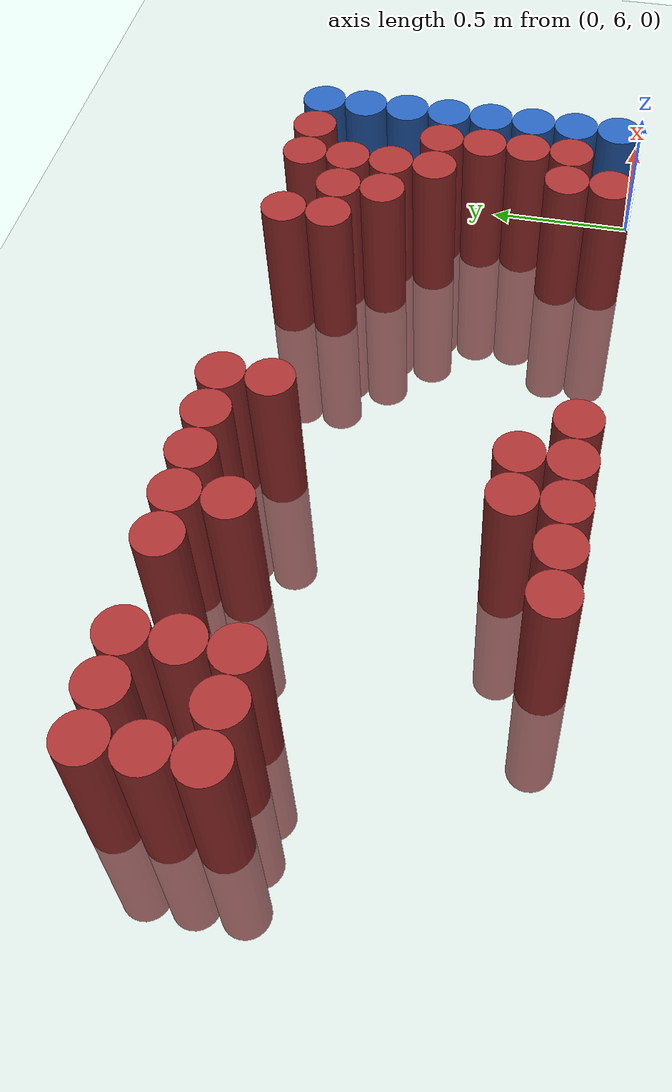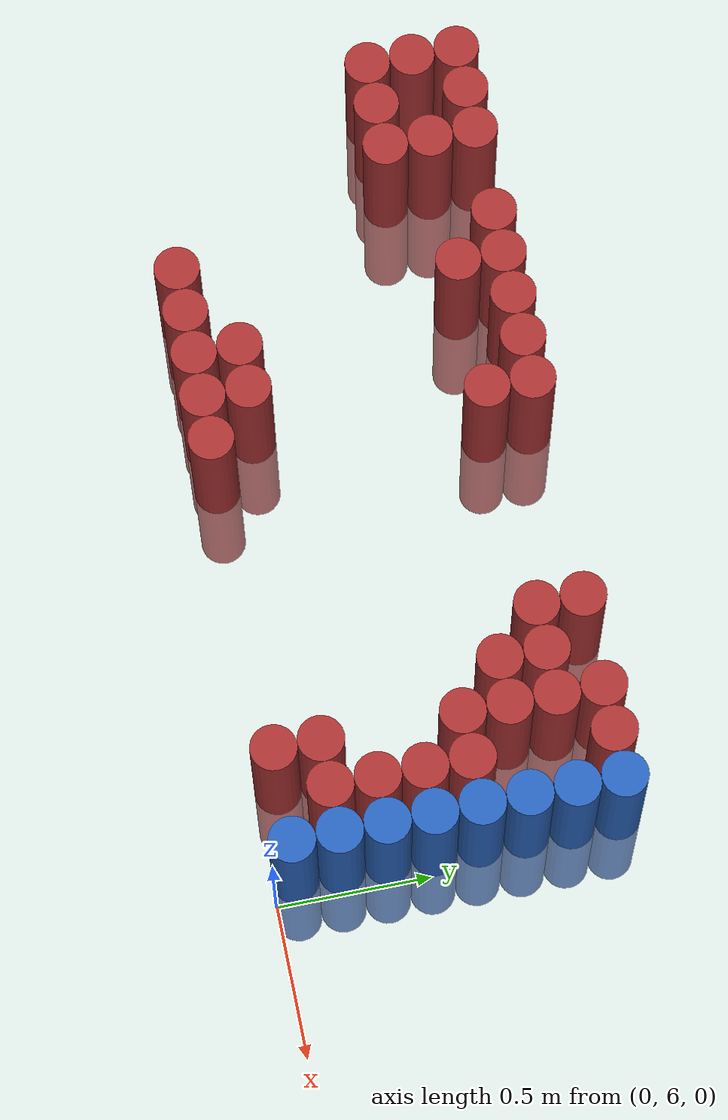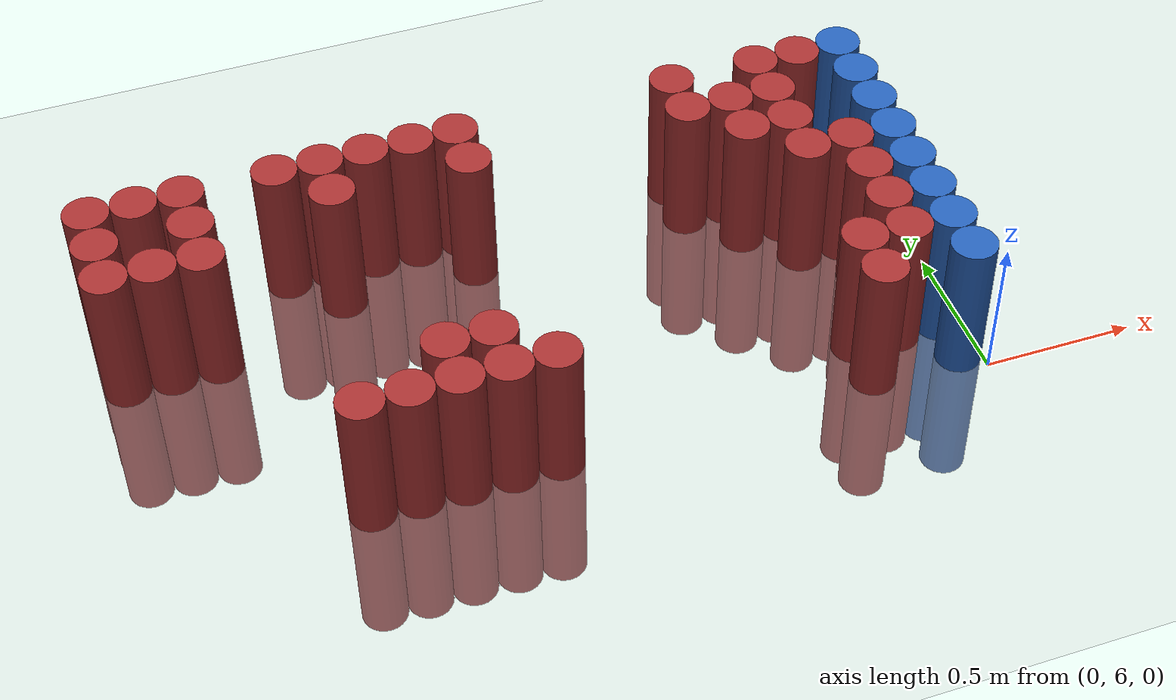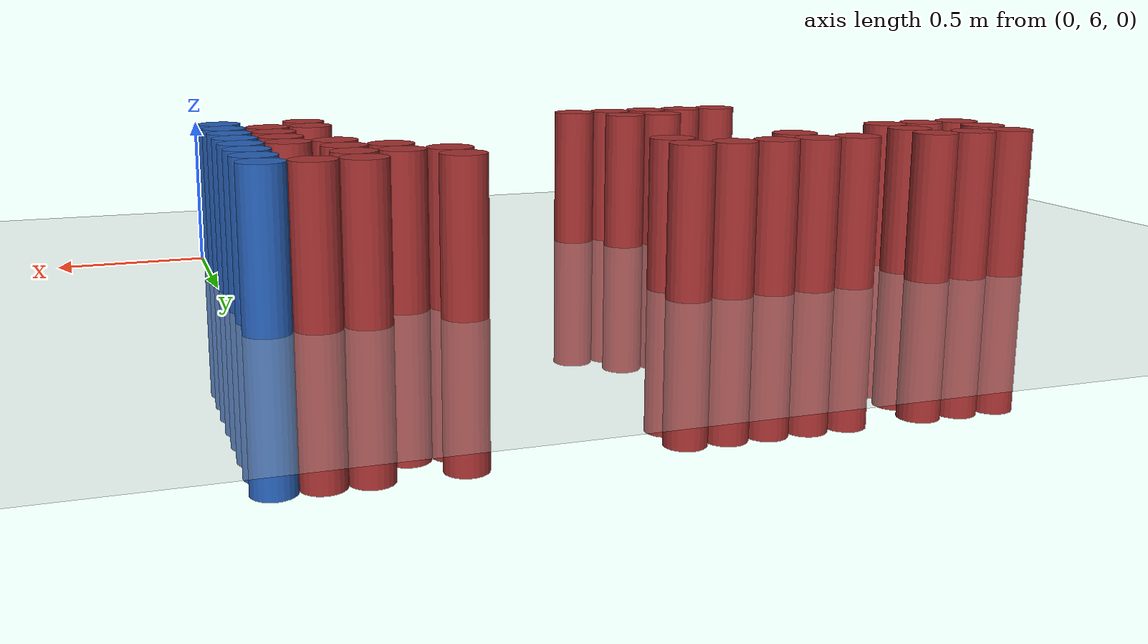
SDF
<sdf version="1.6">
 <world name="default">
  <model name="ground_plane">
   <static>1</static>
   <link name="link">
    <collision name="collision">
     <geometry><plane><normal>0 0 1</normal><size>100 100</size></plane></geometry>
     <surface><friction><ode><mu>100</mu><mu2>50</mu2></ode></friction></surface>
    </collision>
    <visual name="visual">
     <cast_shadows>0</cast_shadows>
     <geometry><plane><normal>0 0 1</normal><size>100 100</size></plane></geometry>
     <material>
      <script><uri>file://media/materials/scripts/gazebo.material</uri><name>Gazebo/Grey</name></script>
     </material>
    </visual>
   </link>
  </model>
  <model name="unit_cylinder_161">
   <static>1</static>
   <pose>-2.625000 6.825000 0.000000 0.000000 0.000000 0.000000</pose>
   <link name="link">
    <inertial>
     <mass>1</mass>
     <inertia><ixx>0.145833</ixx><ixy>0</ixy><ixz>0</ixz><iyy>0.145833</iyy><iyz>0</iyz><izz>0.125</izz></inertia>
    </inertial>
    <collision name="collision">
     <geometry><cylinder><radius>0.075000</radius><length>1</length></cylinder></geometry>
    </collision>
    <visual name="visual">
     <geometry><cylinder><radius>0.075000</radius><length>1</length></cylinder></geometry>
     <material>
      <ambient>0.648000 0.192000 0.192000 1</ambient>
      <diffuse>0.648000 0.192000 0.192000 1</diffuse>
     </material>
     <material>
      <script><name>Gazebo/Grey</name><uri>file://media/materials/scripts/gazebo.material</uri></script>
     </material>
    </visual>
   </link>
  </model>
  <model name="unit_cylinder_162">
   <static>1</static>
   <pose>-2.625000 6.975000 0.000000 0.000000 0.000000 0.000000</pose>
   <link name="link">
    <inertial>
     <mass>1</mass>
     <inertia><ixx>0.145833</ixx><ixy>0</ixy><ixz>0</ixz><iyy>0.145833</iyy><iyz>0</iyz><izz>0.125</izz></inertia>
    </inertial>
    <collision name="collision">
     <geometry><cylinder><radius>0.075000</radius><length>1</length></cylinder></geometry>
    </collision>
    <visual name="visual">
     <geometry><cylinder><radius>0.075000</radius><length>1</length></cylinder></geometry>
     <material>
      <ambient>0.648000 0.192000 0.192000 1</ambient>
      <diffuse>0.648000 0.192000 0.192000 1</diffuse>
     </material>
     <material>
      <script><name>Gazebo/Grey</name><uri>file://media/materials/scripts/gazebo.material</uri></script>
     </material>
    </visual>
   </link>
  </model>
  <model name="unit_cylinder_163">
   <static>1</static>
   <pose>-2.625000 7.125000 0.000000 0.000000 0.000000 0.000000</pose>
   <link name="link">
    <inertial>
     <mass>1</mass>
     <inertia><ixx>0.145833</ixx><ixy>0</ixy><ixz>0</ixz><iyy>0.145833</iyy><iyz>0</iyz><izz>0.125</izz></inertia>
    </inertial>
    <collision name="collision">
     <geometry><cylinder><radius>0.075000</radius><length>1</length></cylinder></geometry>
    </collision>
    <visual name="visual">
     <geometry><cylinder><radius>0.075000</radius><length>1</length></cylinder></geometry>
     <material>
      <ambient>0.648000 0.192000 0.192000 1</ambient>
      <diffuse>0.648000 0.192000 0.192000 1</diffuse>
     </material>
     <material>
      <script><name>Gazebo/Grey</name><uri>file://media/materials/scripts/gazebo.material</uri></script>
     </material>
    </visual>
   </link>
  </model>
  <model name="unit_cylinder_168">
   <static>1</static>
   <pose>-2.475000 6.825000 0.000000 0.000000 0.000000 0.000000</pose>
   <link name="link">
    <inertial>
     <mass>1</mass>
     <inertia><ixx>0.145833</ixx><ixy>0</ixy><ixz>0</ixz><iyy>0.145833</iyy><iyz>0</iyz><izz>0.125</izz></inertia>
    </inertial>
    <collision name="collision">
     <geometry><cylinder><radius>0.075000</radius><length>1</length></cylinder></geometry>
    </collision>
    <visual name="visual">
     <geometry><cylinder><radius>0.075000</radius><length>1</length></cylinder></geometry>
     <material>
      <ambient>0.648000 0.192000 0.192000 1</ambient>
      <diffuse>0.648000 0.192000 0.192000 1</diffuse>
     </material>
     <material>
      <script><name>Gazebo/Grey</name><uri>file://media/materials/scripts/gazebo.material</uri></script>
     </material>
    </visual>
   </link>
  </model>
  <model name="unit_cylinder_169">
   <static>1</static>
   <pose>-2.475000 7.125000 0.000000 0.000000 0.000000 0.000000</pose>
   <link name="link">
    <inertial>
     <mass>1</mass>
     <inertia><ixx>0.145833</ixx><ixy>0</ixy><ixz>0</ixz><iyy>0.145833</iyy><iyz>0</iyz><izz>0.125</izz></inertia>
    </inertial>
    <collision name="collision">
     <geometry><cylinder><radius>0.075000</radius><length>1</length></cylinder></geometry>
    </collision>
    <visual name="visual">
     <geometry><cylinder><radius>0.075000</radius><length>1</length></cylinder></geometry>
     <material>
      <ambient>0.648000 0.192000 0.192000 1</ambient>
      <diffuse>0.648000 0.192000 0.192000 1</diffuse>
     </material>
     <material>
      <script><name>Gazebo/Grey</name><uri>file://media/materials/scripts/gazebo.material</uri></script>
     </material>
    </visual>
   </link>
  </model>
  <model name="unit_cylinder_173">
   <static>1</static>
   <pose>-2.325000 6.825000 0.000000 0.000000 0.000000 0.000000</pose>
   <link name="link">
    <inertial>
     <mass>1</mass>
     <inertia><ixx>0.145833</ixx><ixy>0</ixy><ixz>0</ixz><iyy>0.145833</iyy><iyz>0</iyz><izz>0.125</izz></inertia>
    </inertial>
    <collision name="collision">
     <geometry><cylinder><radius>0.075000</radius><length>1</length></cylinder></geometry>
    </collision>
    <visual name="visual">
     <geometry><cylinder><radius>0.075000</radius><length>1</length></cylinder></geometry>
     <material>
      <ambient>0.648000 0.192000 0.192000 1</ambient>
      <diffuse>0.648000 0.192000 0.192000 1</diffuse>
     </material>
     <material>
      <script><name>Gazebo/Grey</name><uri>file://media/materials/scripts/gazebo.material</uri></script>
     </material>
    </visual>
   </link>
  </model>
  <model name="unit_cylinder_174">
   <static>1</static>
   <pose>-2.325000 6.975000 0.000000 0.000000 0.000000 0.000000</pose>
   <link name="link">
    <inertial>
     <mass>1</mass>
     <inertia><ixx>0.145833</ixx><ixy>0</ixy><ixz>0</ixz><iyy>0.145833</iyy><iyz>0</iyz><izz>0.125</izz></inertia>
    </inertial>
    <collision name="collision">
     <geometry><cylinder><radius>0.075000</radius><length>1</length></cylinder></geometry>
    </collision>
    <visual name="visual">
     <geometry><cylinder><radius>0.075000</radius><length>1</length></cylinder></geometry>
     <material>
      <ambient>0.648000 0.192000 0.192000 1</ambient>
      <diffuse>0.648000 0.192000 0.192000 1</diffuse>
     </material>
     <material>
      <script><name>Gazebo/Grey</name><uri>file://media/materials/scripts/gazebo.material</uri></script>
     </material>
    </visual>
   </link>
  </model>
  <model name="unit_cylinder_175">
   <static>1</static>
   <pose>-2.325000 7.125000 0.000000 0.000000 0.000000 0.000000</pose>
   <link name="link">
    <inertial>
     <mass>1</mass>
     <inertia><ixx>0.145833</ixx><ixy>0</ixy><ixz>0</ixz><iyy>0.145833</iyy><iyz>0</iyz><izz>0.125</izz></inertia>
    </inertial>
    <collision name="collision">
     <geometry><cylinder><radius>0.075000</radius><length>1</length></cylinder></geometry>
    </collision>
    <visual name="visual">
     <geometry><cylinder><radius>0.075000</radius><length>1</length></cylinder></geometry>
     <material>
      <ambient>0.648000 0.192000 0.192000 1</ambient>
      <diffuse>0.648000 0.192000 0.192000 1</diffuse>
     </material>
     <material>
      <script><name>Gazebo/Grey</name><uri>file://media/materials/scripts/gazebo.material</uri></script>
     </material>
    </visual>
   </link>
  </model>
  <model name="unit_cylinder_180">
   <static>1</static>
   <pose>-2.025000 6.075000 0.000000 0.000000 0.000000 0.000000</pose>
   <link name="link">
    <inertial>
     <mass>1</mass>
     <inertia><ixx>0.145833</ixx><ixy>0</ixy><ixz>0</ixz><iyy>0.145833</iyy><iyz>0</iyz><izz>0.125</izz></inertia>
    </inertial>
    <collision name="collision">
     <geometry><cylinder><radius>0.075000</radius><length>1</length></cylinder></geometry>
    </collision>
    <visual name="visual">
     <geometry><cylinder><radius>0.075000</radius><length>1</length></cylinder></geometry>
     <material>
      <ambient>0.648000 0.192000 0.192000 1</ambient>
      <diffuse>0.648000 0.192000 0.192000 1</diffuse>
     </material>
     <material>
      <script><name>Gazebo/Grey</name><uri>file://media/materials/scripts/gazebo.material</uri></script>
     </material>
    </visual>
   </link>
  </model>
  <model name="unit_cylinder_181">
   <static>1</static>
   <pose>-2.025000 7.125000 0.000000 0.000000 0.000000 0.000000</pose>
   <link name="link">
    <inertial>
     <mass>1</mass>
     <inertia><ixx>0.145833</ixx><ixy>0</ixy><ixz>0</ixz><iyy>0.145833</iyy><iyz>0</iyz><izz>0.125</izz></inertia>
    </inertial>
    <collision name="collision">
     <geometry><cylinder><radius>0.075000</radius><length>1</length></cylinder></geometry>
    </collision>
    <visual name="visual">
     <geometry><cylinder><radius>0.075000</radius><length>1</length></cylinder></geometry>
     <material>
      <ambient>0.648000 0.192000 0.192000 1</ambient>
      <diffuse>0.648000 0.192000 0.192000 1</diffuse>
     </material>
     <material>
      <script><name>Gazebo/Grey</name><uri>file://media/materials/scripts/gazebo.material</uri></script>
     </material>
    </visual>
   </link>
  </model>
  <model name="unit_cylinder_183">
   <static>1</static>
   <pose>-1.875000 6.075000 0.000000 0.000000 0.000000 0.000000</pose>
   <link name="link">
    <inertial>
     <mass>1</mass>
     <inertia><ixx>0.145833</ixx><ixy>0</ixy><ixz>0</ixz><iyy>0.145833</iyy><iyz>0</iyz><izz>0.125</izz></inertia>
    </inertial>
    <collision name="collision">
     <geometry><cylinder><radius>0.075000</radius><length>1</length></cylinder></geometry>
    </collision>
    <visual name="visual">
     <geometry><cylinder><radius>0.075000</radius><length>1</length></cylinder></geometry>
     <material>
      <ambient>0.648000 0.192000 0.192000 1</ambient>
      <diffuse>0.648000 0.192000 0.192000 1</diffuse>
     </material>
     <material>
      <script><name>Gazebo/Grey</name><uri>file://media/materials/scripts/gazebo.material</uri></script>
     </material>
    </visual>
   </link>
  </model>
  <model name="unit_cylinder_184">
   <static>1</static>
   <pose>-1.875000 6.975000 0.000000 0.000000 0.000000 0.000000</pose>
   <link name="link">
    <inertial>
     <mass>1</mass>
     <inertia><ixx>0.145833</ixx><ixy>0</ixy><ixz>0</ixz><iyy>0.145833</iyy><iyz>0</iyz><izz>0.125</izz></inertia>
    </inertial>
    <collision name="collision">
     <geometry><cylinder><radius>0.075000</radius><length>1</length></cylinder></geometry>
    </collision>
    <visual name="visual">
     <geometry><cylinder><radius>0.075000</radius><length>1</length></cylinder></geometry>
     <material>
      <ambient>0.648000 0.192000 0.192000 1</ambient>
      <diffuse>0.648000 0.192000 0.192000 1</diffuse>
     </material>
     <material>
      <script><name>Gazebo/Grey</name><uri>file://media/materials/scripts/gazebo.material</uri></script>
     </material>
    </visual>
   </link>
  </model>
  <model name="unit_cylinder_185">
   <static>1</static>
   <pose>-1.875000 7.125000 0.000000 0.000000 0.000000 0.000000</pose>
   <link name="link">
    <inertial>
     <mass>1</mass>
     <inertia><ixx>0.145833</ixx><ixy>0</ixy><ixz>0</ixz><iyy>0.145833</iyy><iyz>0</iyz><izz>0.125</izz></inertia>
    </inertial>
    <collision name="collision">
     <geometry><cylinder><radius>0.075000</radius><length>1</length></cylinder></geometry>
    </collision>
    <visual name="visual">
     <geometry><cylinder><radius>0.075000</radius><length>1</length></cylinder></geometry>
     <material>
      <ambient>0.648000 0.192000 0.192000 1</ambient>
      <diffuse>0.648000 0.192000 0.192000 1</diffuse>
     </material>
     <material>
      <script><name>Gazebo/Grey</name><uri>file://media/materials/scripts/gazebo.material</uri></script>
     </material>
    </visual>
   </link>
  </model>
  <model name="unit_cylinder_190">
   <static>1</static>
   <pose>-1.725000 6.075000 0.000000 0.000000 0.000000 0.000000</pose>
   <link name="link">
    <inertial>
     <mass>1</mass>
     <inertia><ixx>0.145833</ixx><ixy>0</ixy><ixz>0</ixz><iyy>0.145833</iyy><iyz>0</iyz><izz>0.125</izz></inertia>
    </inertial>
    <collision name="collision">
     <geometry><cylinder><radius>0.075000</radius><length>1</length></cylinder></geometry>
    </collision>
    <visual name="visual">
     <geometry><cylinder><radius>0.075000</radius><length>1</length></cylinder></geometry>
     <material>
      <ambient>0.648000 0.192000 0.192000 1</ambient>
      <diffuse>0.648000 0.192000 0.192000 1</diffuse>
     </material>
     <material>
      <script><name>Gazebo/Grey</name><uri>file://media/materials/scripts/gazebo.material</uri></script>
     </material>
    </visual>
   </link>
  </model>
  <model name="unit_cylinder_191">
   <static>1</static>
   <pose>-1.725000 6.225000 0.000000 0.000000 0.000000 0.000000</pose>
   <link name="link">
    <inertial>
     <mass>1</mass>
     <inertia><ixx>0.145833</ixx><ixy>0</ixy><ixz>0</ixz><iyy>0.145833</iyy><iyz>0</iyz><izz>0.125</izz></inertia>
    </inertial>
    <collision name="collision">
     <geometry><cylinder><radius>0.075000</radius><length>1</length></cylinder></geometry>
    </collision>
    <visual name="visual">
     <geometry><cylinder><radius>0.075000</radius><length>1</length></cylinder></geometry>
     <material>
      <ambient>0.648000 0.192000 0.192000 1</ambient>
      <diffuse>0.648000 0.192000 0.192000 1</diffuse>
     </material>
     <material>
      <script><name>Gazebo/Grey</name><uri>file://media/materials/scripts/gazebo.material</uri></script>
     </material>
    </visual>
   </link>
  </model>
  <model name="unit_cylinder_192">
   <static>1</static>
   <pose>-1.725000 7.125000 0.000000 0.000000 0.000000 0.000000</pose>
   <link name="link">
    <inertial>
     <mass>1</mass>
     <inertia><ixx>0.145833</ixx><ixy>0</ixy><ixz>0</ixz><iyy>0.145833</iyy><iyz>0</iyz><izz>0.125</izz></inertia>
    </inertial>
    <collision name="collision">
     <geometry><cylinder><radius>0.075000</radius><length>1</length></cylinder></geometry>
    </collision>
    <visual name="visual">
     <geometry><cylinder><radius>0.075000</radius><length>1</length></cylinder></geometry>
     <material>
      <ambient>0.648000 0.192000 0.192000 1</ambient>
      <diffuse>0.648000 0.192000 0.192000 1</diffuse>
     </material>
     <material>
      <script><name>Gazebo/Grey</name><uri>file://media/materials/scripts/gazebo.material</uri></script>
     </material>
    </visual>
   </link>
  </model>
  <model name="unit_cylinder_197">
   <static>1</static>
   <pose>-1.575000 6.075000 0.000000 0.000000 0.000000 0.000000</pose>
   <link name="link">
    <inertial>
     <mass>1</mass>
     <inertia><ixx>0.145833</ixx><ixy>0</ixy><ixz>0</ixz><iyy>0.145833</iyy><iyz>0</iyz><izz>0.125</izz></inertia>
    </inertial>
    <collision name="collision">
     <geometry><cylinder><radius>0.075000</radius><length>1</length></cylinder></geometry>
    </collision>
    <visual name="visual">
     <geometry><cylinder><radius>0.075000</radius><length>1</length></cylinder></geometry>
     <material>
      <ambient>0.648000 0.192000 0.192000 1</ambient>
      <diffuse>0.648000 0.192000 0.192000 1</diffuse>
     </material>
     <material>
      <script><name>Gazebo/Grey</name><uri>file://media/materials/scripts/gazebo.material</uri></script>
     </material>
    </visual>
   </link>
  </model>
  <model name="unit_cylinder_198">
   <static>1</static>
   <pose>-1.575000 6.225000 0.000000 0.000000 0.000000 0.000000</pose>
   <link name="link">
    <inertial>
     <mass>1</mass>
     <inertia><ixx>0.145833</ixx><ixy>0</ixy><ixz>0</ixz><iyy>0.145833</iyy><iyz>0</iyz><izz>0.125</izz></inertia>
    </inertial>
    <collision name="collision">
     <geometry><cylinder><radius>0.075000</radius><length>1</length></cylinder></geometry>
    </collision>
    <visual name="visual">
     <geometry><cylinder><radius>0.075000</radius><length>1</length></cylinder></geometry>
     <material>
      <ambient>0.648000 0.192000 0.192000 1</ambient>
      <diffuse>0.648000 0.192000 0.192000 1</diffuse>
     </material>
     <material>
      <script><name>Gazebo/Grey</name><uri>file://media/materials/scripts/gazebo.material</uri></script>
     </material>
    </visual>
   </link>
  </model>
  <model name="unit_cylinder_199">
   <static>1</static>
   <pose>-1.575000 7.125000 0.000000 0.000000 0.000000 0.000000</pose>
   <link name="link">
    <inertial>
     <mass>1</mass>
     <inertia><ixx>0.145833</ixx><ixy>0</ixy><ixz>0</ixz><iyy>0.145833</iyy><iyz>0</iyz><izz>0.125</izz></inertia>
    </inertial>
    <collision name="collision">
     <geometry><cylinder><radius>0.075000</radius><length>1</length></cylinder></geometry>
    </collision>
    <visual name="visual">
     <geometry><cylinder><radius>0.075000</radius><length>1</length></cylinder></geometry>
     <material>
      <ambient>0.648000 0.192000 0.192000 1</ambient>
      <diffuse>0.648000 0.192000 0.192000 1</diffuse>
     </material>
     <material>
      <script><name>Gazebo/Grey</name><uri>file://media/materials/scripts/gazebo.material</uri></script>
     </material>
    </visual>
   </link>
  </model>
  <model name="unit_cylinder_203">
   <static>1</static>
   <pose>-1.425000 6.075000 0.000000 0.000000 0.000000 0.000000</pose>
   <link name="link">
    <inertial>
     <mass>1</mass>
     <inertia><ixx>0.145833</ixx><ixy>0</ixy><ixz>0</ixz><iyy>0.145833</iyy><iyz>0</iyz><izz>0.125</izz></inertia>
    </inertial>
    <collision name="collision">
     <geometry><cylinder><radius>0.075000</radius><length>1</length></cylinder></geometry>
    </collision>
    <visual name="visual">
     <geometry><cylinder><radius>0.075000</radius><length>1</length></cylinder></geometry>
     <material>
      <ambient>0.648000 0.192000 0.192000 1</ambient>
      <diffuse>0.648000 0.192000 0.192000 1</diffuse>
     </material>
     <material>
      <script><name>Gazebo/Grey</name><uri>file://media/materials/scripts/gazebo.material</uri></script>
     </material>
    </visual>
   </link>
  </model>
  <model name="unit_cylinder_204">
   <static>1</static>
   <pose>-1.425000 6.975000 0.000000 0.000000 0.000000 0.000000</pose>
   <link name="link">
    <inertial>
     <mass>1</mass>
     <inertia><ixx>0.145833</ixx><ixy>0</ixy><ixz>0</ixz><iyy>0.145833</iyy><iyz>0</iyz><izz>0.125</izz></inertia>
    </inertial>
    <collision name="collision">
     <geometry><cylinder><radius>0.075000</radius><length>1</length></cylinder></geometry>
    </collision>
    <visual name="visual">
     <geometry><cylinder><radius>0.075000</radius><length>1</length></cylinder></geometry>
     <material>
      <ambient>0.648000 0.192000 0.192000 1</ambient>
      <diffuse>0.648000 0.192000 0.192000 1</diffuse>
     </material>
     <material>
      <script><name>Gazebo/Grey</name><uri>file://media/materials/scripts/gazebo.material</uri></script>
     </material>
    </visual>
   </link>
  </model>
  <model name="unit_cylinder_205">
   <static>1</static>
   <pose>-1.425000 7.125000 0.000000 0.000000 0.000000 0.000000</pose>
   <link name="link">
    <inertial>
     <mass>1</mass>
     <inertia><ixx>0.145833</ixx><ixy>0</ixy><ixz>0</ixz><iyy>0.145833</iyy><iyz>0</iyz><izz>0.125</izz></inertia>
    </inertial>
    <collision name="collision">
     <geometry><cylinder><radius>0.075000</radius><length>1</length></cylinder></geometry>
    </collision>
    <visual name="visual">
     <geometry><cylinder><radius>0.075000</radius><length>1</length></cylinder></geometry>
     <material>
      <ambient>0.648000 0.192000 0.192000 1</ambient>
      <diffuse>0.648000 0.192000 0.192000 1</diffuse>
     </material>
     <material>
      <script><name>Gazebo/Grey</name><uri>file://media/materials/scripts/gazebo.material</uri></script>
     </material>
    </visual>
   </link>
  </model>
  <model name="unit_cylinder_212">
   <static>1</static>
   <pose>-0.675000 6.975000 0.000000 0.000000 0.000000 0.000000</pose>
   <link name="link">
    <inertial>
     <mass>1</mass>
     <inertia><ixx>0.145833</ixx><ixy>0</ixy><ixz>0</ixz><iyy>0.145833</iyy><iyz>0</iyz><izz>0.125</izz></inertia>
    </inertial>
    <collision name="collision">
     <geometry><cylinder><radius>0.075000</radius><length>1</length></cylinder></geometry>
    </collision>
    <visual name="visual">
     <geometry><cylinder><radius>0.075000</radius><length>1</length></cylinder></geometry>
     <material>
      <ambient>0.648000 0.192000 0.192000 1</ambient>
      <diffuse>0.648000 0.192000 0.192000 1</diffuse>
     </material>
     <material>
      <script><name>Gazebo/Grey</name><uri>file://media/materials/scripts/gazebo.material</uri></script>
     </material>
    </visual>
   </link>
  </model>
  <model name="unit_cylinder_213">
   <static>1</static>
   <pose>-0.675000 7.125000 0.000000 0.000000 0.000000 0.000000</pose>
   <link name="link">
    <inertial>
     <mass>1</mass>
     <inertia><ixx>0.145833</ixx><ixy>0</ixy><ixz>0</ixz><iyy>0.145833</iyy><iyz>0</iyz><izz>0.125</izz></inertia>
    </inertial>
    <collision name="collision">
     <geometry><cylinder><radius>0.075000</radius><length>1</length></cylinder></geometry>
    </collision>
    <visual name="visual">
     <geometry><cylinder><radius>0.075000</radius><length>1</length></cylinder></geometry>
     <material>
      <ambient>0.648000 0.192000 0.192000 1</ambient>
      <diffuse>0.648000 0.192000 0.192000 1</diffuse>
     </material>
     <material>
      <script><name>Gazebo/Grey</name><uri>file://media/materials/scripts/gazebo.material</uri></script>
     </material>
    </visual>
   </link>
  </model>
  <model name="unit_cylinder_217">
   <static>1</static>
   <pose>-0.525000 6.825000 0.000000 0.000000 0.000000 0.000000</pose>
   <link name="link">
    <inertial>
     <mass>1</mass>
     <inertia><ixx>0.145833</ixx><ixy>0</ixy><ixz>0</ixz><iyy>0.145833</iyy><iyz>0</iyz><izz>0.125</izz></inertia>
    </inertial>
    <collision name="collision">
     <geometry><cylinder><radius>0.075000</radius><length>1</length></cylinder></geometry>
    </collision>
    <visual name="visual">
     <geometry><cylinder><radius>0.075000</radius><length>1</length></cylinder></geometry>
     <material>
      <ambient>0.648000 0.192000 0.192000 1</ambient>
      <diffuse>0.648000 0.192000 0.192000 1</diffuse>
     </material>
     <material>
      <script><name>Gazebo/Grey</name><uri>file://media/materials/scripts/gazebo.material</uri></script>
     </material>
    </visual>
   </link>
  </model>
  <model name="unit_cylinder_218">
   <static>1</static>
   <pose>-0.525000 6.975000 0.000000 0.000000 0.000000 0.000000</pose>
   <link name="link">
    <inertial>
     <mass>1</mass>
     <inertia><ixx>0.145833</ixx><ixy>0</ixy><ixz>0</ixz><iyy>0.145833</iyy><iyz>0</iyz><izz>0.125</izz></inertia>
    </inertial>
    <collision name="collision">
     <geometry><cylinder><radius>0.075000</radius><length>1</length></cylinder></geometry>
    </collision>
    <visual name="visual">
     <geometry><cylinder><radius>0.075000</radius><length>1</length></cylinder></geometry>
     <material>
      <ambient>0.648000 0.192000 0.192000 1</ambient>
      <diffuse>0.648000 0.192000 0.192000 1</diffuse>
     </material>
     <material>
      <script><name>Gazebo/Grey</name><uri>file://media/materials/scripts/gazebo.material</uri></script>
     </material>
    </visual>
   </link>
  </model>
  <model name="unit_cylinder_228">
   <static>1</static>
   <pose>-0.375000 6.075000 0.000000 0.000000 0.000000 0.000000</pose>
   <link name="link">
    <inertial>
     <mass>1</mass>
     <inertia><ixx>0.145833</ixx><ixy>0</ixy><ixz>0</ixz><iyy>0.145833</iyy><iyz>0</iyz><izz>0.125</izz></inertia>
    </inertial>
    <collision name="collision">
     <geometry><cylinder><radius>0.075000</radius><length>1</length></cylinder></geometry>
    </collision>
    <visual name="visual">
     <geometry><cylinder><radius>0.075000</radius><length>1</length></cylinder></geometry>
     <material>
      <ambient>0.648000 0.192000 0.192000 1</ambient>
      <diffuse>0.648000 0.192000 0.192000 1</diffuse>
     </material>
     <material>
      <script><name>Gazebo/Grey</name><uri>file://media/materials/scripts/gazebo.material</uri></script>
     </material>
    </visual>
   </link>
  </model>
  <model name="unit_cylinder_229">
   <static>1</static>
   <pose>-0.375000 6.225000 0.000000 0.000000 0.000000 0.000000</pose>
   <link name="link">
    <inertial>
     <mass>1</mass>
     <inertia><ixx>0.145833</ixx><ixy>0</ixy><ixz>0</ixz><iyy>0.145833</iyy><iyz>0</iyz><izz>0.125</izz></inertia>
    </inertial>
    <collision name="collision">
     <geometry><cylinder><radius>0.075000</radius><length>1</length></cylinder></geometry>
    </collision>
    <visual name="visual">
     <geometry><cylinder><radius>0.075000</radius><length>1</length></cylinder></geometry>
     <material>
      <ambient>0.648000 0.192000 0.192000 1</ambient>
      <diffuse>0.648000 0.192000 0.192000 1</diffuse>
     </material>
     <material>
      <script><name>Gazebo/Grey</name><uri>file://media/materials/scripts/gazebo.material</uri></script>
     </material>
    </visual>
   </link>
  </model>
  <model name="unit_cylinder_230">
   <static>1</static>
   <pose>-0.375000 6.675000 0.000000 0.000000 0.000000 0.000000</pose>
   <link name="link">
    <inertial>
     <mass>1</mass>
     <inertia><ixx>0.145833</ixx><ixy>0</ixy><ixz>0</ixz><iyy>0.145833</iyy><iyz>0</iyz><izz>0.125</izz></inertia>
    </inertial>
    <collision name="collision">
     <geometry><cylinder><radius>0.075000</radius><length>1</length></cylinder></geometry>
    </collision>
    <visual name="visual">
     <geometry><cylinder><radius>0.075000</radius><length>1</length></cylinder></geometry>
     <material>
      <ambient>0.648000 0.192000 0.192000 1</ambient>
      <diffuse>0.648000 0.192000 0.192000 1</diffuse>
     </material>
     <material>
      <script><name>Gazebo/Grey</name><uri>file://media/materials/scripts/gazebo.material</uri></script>
     </material>
    </visual>
   </link>
  </model>
  <model name="unit_cylinder_231">
   <static>1</static>
   <pose>-0.375000 6.825000 0.000000 0.000000 0.000000 0.000000</pose>
   <link name="link">
    <inertial>
     <mass>1</mass>
     <inertia><ixx>0.145833</ixx><ixy>0</ixy><ixz>0</ixz><iyy>0.145833</iyy><iyz>0</iyz><izz>0.125</izz></inertia>
    </inertial>
    <collision name="collision">
     <geometry><cylinder><radius>0.075000</radius><length>1</length></cylinder></geometry>
    </collision>
    <visual name="visual">
     <geometry><cylinder><radius>0.075000</radius><length>1</length></cylinder></geometry>
     <material>
      <ambient>0.648000 0.192000 0.192000 1</ambient>
      <diffuse>0.648000 0.192000 0.192000 1</diffuse>
     </material>
     <material>
      <script><name>Gazebo/Grey</name><uri>file://media/materials/scripts/gazebo.material</uri></script>
     </material>
    </visual>
   </link>
  </model>
  <model name="unit_cylinder_232">
   <static>1</static>
   <pose>-0.375000 6.975000 0.000000 0.000000 0.000000 0.000000</pose>
   <link name="link">
    <inertial>
     <mass>1</mass>
     <inertia><ixx>0.145833</ixx><ixy>0</ixy><ixz>0</ixz><iyy>0.145833</iyy><iyz>0</iyz><izz>0.125</izz></inertia>
    </inertial>
    <collision name="collision">
     <geometry><cylinder><radius>0.075000</radius><length>1</length></cylinder></geometry>
    </collision>
    <visual name="visual">
     <geometry><cylinder><radius>0.075000</radius><length>1</length></cylinder></geometry>
     <material>
      <ambient>0.648000 0.192000 0.192000 1</ambient>
      <diffuse>0.648000 0.192000 0.192000 1</diffuse>
     </material>
     <material>
      <script><name>Gazebo/Grey</name><uri>file://media/materials/scripts/gazebo.material</uri></script>
     </material>
    </visual>
   </link>
  </model>
  <model name="unit_cylinder_233">
   <static>1</static>
   <pose>-0.375000 7.125000 0.000000 0.000000 0.000000 0.000000</pose>
   <link name="link">
    <inertial>
     <mass>1</mass>
     <inertia><ixx>0.145833</ixx><ixy>0</ixy><ixz>0</ixz><iyy>0.145833</iyy><iyz>0</iyz><izz>0.125</izz></inertia>
    </inertial>
    <collision name="collision">
     <geometry><cylinder><radius>0.075000</radius><length>1</length></cylinder></geometry>
    </collision>
    <visual name="visual">
     <geometry><cylinder><radius>0.075000</radius><length>1</length></cylinder></geometry>
     <material>
      <ambient>0.648000 0.192000 0.192000 1</ambient>
      <diffuse>0.648000 0.192000 0.192000 1</diffuse>
     </material>
     <material>
      <script><name>Gazebo/Grey</name><uri>file://media/materials/scripts/gazebo.material</uri></script>
     </material>
    </visual>
   </link>
  </model>
  <model name="unit_cylinder_235">
   <static>1</static>
   <pose>-0.225000 6.225000 0.000000 0.000000 0.000000 0.000000</pose>
   <link name="link">
    <inertial>
     <mass>1</mass>
     <inertia><ixx>0.145833</ixx><ixy>0</ixy><ixz>0</ixz><iyy>0.145833</iyy><iyz>0</iyz><izz>0.125</izz></inertia>
    </inertial>
    <collision name="collision">
     <geometry><cylinder><radius>0.075000</radius><length>1</length></cylinder></geometry>
    </collision>
    <visual name="visual">
     <geometry><cylinder><radius>0.075000</radius><length>1</length></cylinder></geometry>
     <material>
      <ambient>0.648000 0.192000 0.192000 1</ambient>
      <diffuse>0.648000 0.192000 0.192000 1</diffuse>
     </material>
     <material>
      <script><name>Gazebo/Grey</name><uri>file://media/materials/scripts/gazebo.material</uri></script>
     </material>
    </visual>
   </link>
  </model>
  <model name="unit_cylinder_236">
   <static>1</static>
   <pose>-0.225000 6.375000 0.000000 0.000000 0.000000 0.000000</pose>
   <link name="link">
    <inertial>
     <mass>1</mass>
     <inertia><ixx>0.145833</ixx><ixy>0</ixy><ixz>0</ixz><iyy>0.145833</iyy><iyz>0</iyz><izz>0.125</izz></inertia>
    </inertial>
    <collision name="collision">
     <geometry><cylinder><radius>0.075000</radius><length>1</length></cylinder></geometry>
    </collision>
    <visual name="visual">
     <geometry><cylinder><radius>0.075000</radius><length>1</length></cylinder></geometry>
     <material>
      <ambient>0.648000 0.192000 0.192000 1</ambient>
      <diffuse>0.648000 0.192000 0.192000 1</diffuse>
     </material>
     <material>
      <script><name>Gazebo/Grey</name><uri>file://media/materials/scripts/gazebo.material</uri></script>
     </material>
    </visual>
   </link>
  </model>
  <model name="unit_cylinder_237">
   <static>1</static>
   <pose>-0.225000 6.525000 0.000000 0.000000 0.000000 0.000000</pose>
   <link name="link">
    <inertial>
     <mass>1</mass>
     <inertia><ixx>0.145833</ixx><ixy>0</ixy><ixz>0</ixz><iyy>0.145833</iyy><iyz>0</iyz><izz>0.125</izz></inertia>
    </inertial>
    <collision name="collision">
     <geometry><cylinder><radius>0.075000</radius><length>1</length></cylinder></geometry>
    </collision>
    <visual name="visual">
     <geometry><cylinder><radius>0.075000</radius><length>1</length></cylinder></geometry>
     <material>
      <ambient>0.648000 0.192000 0.192000 1</ambient>
      <diffuse>0.648000 0.192000 0.192000 1</diffuse>
     </material>
     <material>
      <script><name>Gazebo/Grey</name><uri>file://media/materials/scripts/gazebo.material</uri></script>
     </material>
    </visual>
   </link>
  </model>
  <model name="unit_cylinder_238">
   <static>1</static>
   <pose>-0.225000 6.675000 0.000000 0.000000 0.000000 0.000000</pose>
   <link name="link">
    <inertial>
     <mass>1</mass>
     <inertia><ixx>0.145833</ixx><ixy>0</ixy><ixz>0</ixz><iyy>0.145833</iyy><iyz>0</iyz><izz>0.125</izz></inertia>
    </inertial>
    <collision name="collision">
     <geometry><cylinder><radius>0.075000</radius><length>1</length></cylinder></geometry>
    </collision>
    <visual name="visual">
     <geometry><cylinder><radius>0.075000</radius><length>1</length></cylinder></geometry>
     <material>
      <ambient>0.648000 0.192000 0.192000 1</ambient>
      <diffuse>0.648000 0.192000 0.192000 1</diffuse>
     </material>
     <material>
      <script><name>Gazebo/Grey</name><uri>file://media/materials/scripts/gazebo.material</uri></script>
     </material>
    </visual>
   </link>
  </model>
  <model name="unit_cylinder_239">
   <static>1</static>
   <pose>-0.225000 7.125000 0.000000 0.000000 0.000000 0.000000</pose>
   <link name="link">
    <inertial>
     <mass>1</mass>
     <inertia><ixx>0.145833</ixx><ixy>0</ixy><ixz>0</ixz><iyy>0.145833</iyy><iyz>0</iyz><izz>0.125</izz></inertia>
    </inertial>
    <collision name="collision">
     <geometry><cylinder><radius>0.075000</radius><length>1</length></cylinder></geometry>
    </collision>
    <visual name="visual">
     <geometry><cylinder><radius>0.075000</radius><length>1</length></cylinder></geometry>
     <material>
      <ambient>0.648000 0.192000 0.192000 1</ambient>
      <diffuse>0.648000 0.192000 0.192000 1</diffuse>
     </material>
     <material>
      <script><name>Gazebo/Grey</name><uri>file://media/materials/scripts/gazebo.material</uri></script>
     </material>
    </visual>
   </link>
  </model>
  <model name="unit_cylinder_251">
   <static>1</static>
   <pose>-0.075000 6.075000 0.000000 0.000000 0.000000 0.000000</pose>
   <link name="link">
    <inertial>
     <mass>1</mass>
     <inertia><ixx>0.145833</ixx><ixy>0</ixy><ixz>0</ixz><iyy>0.145833</iyy><iyz>0</iyz><izz>0.125</izz></inertia>
    </inertial>
    <collision name="collision">
     <geometry><cylinder><radius>0.075000</radius><length>1</length></cylinder></geometry>
    </collision>
    <visual name="visual">
     <geometry><cylinder><radius>0.075000</radius><length>1</length></cylinder></geometry>
     <material>
      <ambient>0.152000 0.379000 0.720000 1</ambient>
      <diffuse>0.152000 0.379000 0.720000 1</diffuse>
     </material>
     <material>
      <script><name>Gazebo/Grey</name><uri>file://media/materials/scripts/gazebo.material</uri></script>
     </material>
    </visual>
   </link>
  </model>
  <model name="unit_cylinder_252">
   <static>1</static>
   <pose>-0.075000 6.225000 0.000000 0.000000 0.000000 0.000000</pose>
   <link name="link">
    <inertial>
     <mass>1</mass>
     <inertia><ixx>0.145833</ixx><ixy>0</ixy><ixz>0</ixz><iyy>0.145833</iyy><iyz>0</iyz><izz>0.125</izz></inertia>
    </inertial>
    <collision name="collision">
     <geometry><cylinder><radius>0.075000</radius><length>1</length></cylinder></geometry>
    </collision>
    <visual name="visual">
     <geometry><cylinder><radius>0.075000</radius><length>1</length></cylinder></geometry>
     <material>
      <ambient>0.152000 0.379000 0.720000 1</ambient>
      <diffuse>0.152000 0.379000 0.720000 1</diffuse>
     </material>
     <material>
      <script><name>Gazebo/Grey</name><uri>file://media/materials/scripts/gazebo.material</uri></script>
     </material>
    </visual>
   </link>
  </model>
  <model name="unit_cylinder_253">
   <static>1</static>
   <pose>-0.075000 6.375000 0.000000 0.000000 0.000000 0.000000</pose>
   <link name="link">
    <inertial>
     <mass>1</mass>
     <inertia><ixx>0.145833</ixx><ixy>0</ixy><ixz>0</ixz><iyy>0.145833</iyy><iyz>0</iyz><izz>0.125</izz></inertia>
    </inertial>
    <collision name="collision">
     <geometry><cylinder><radius>0.075000</radius><length>1</length></cylinder></geometry>
    </collision>
    <visual name="visual">
     <geometry><cylinder><radius>0.075000</radius><length>1</length></cylinder></geometry>
     <material>
      <ambient>0.152000 0.379000 0.720000 1</ambient>
      <diffuse>0.152000 0.379000 0.720000 1</diffuse>
     </material>
     <material>
      <script><name>Gazebo/Grey</name><uri>file://media/materials/scripts/gazebo.material</uri></script>
     </material>
    </visual>
   </link>
  </model>
  <model name="unit_cylinder_254">
   <static>1</static>
   <pose>-0.075000 6.525000 0.000000 0.000000 0.000000 0.000000</pose>
   <link name="link">
    <inertial>
     <mass>1</mass>
     <inertia><ixx>0.145833</ixx><ixy>0</ixy><ixz>0</ixz><iyy>0.145833</iyy><iyz>0</iyz><izz>0.125</izz></inertia>
    </inertial>
    <collision name="collision">
     <geometry><cylinder><radius>0.075000</radius><length>1</length></cylinder></geometry>
    </collision>
    <visual name="visual">
     <geometry><cylinder><radius>0.075000</radius><length>1</length></cylinder></geometry>
     <material>
      <ambient>0.152000 0.379000 0.720000 1</ambient>
      <diffuse>0.152000 0.379000 0.720000 1</diffuse>
     </material>
     <material>
      <script><name>Gazebo/Grey</name><uri>file://media/materials/scripts/gazebo.material</uri></script>
     </material>
    </visual>
   </link>
  </model>
  <model name="unit_cylinder_255">
   <static>1</static>
   <pose>-0.075000 6.675000 0.000000 0.000000 0.000000 0.000000</pose>
   <link name="link">
    <inertial>
     <mass>1</mass>
     <inertia><ixx>0.145833</ixx><ixy>0</ixy><ixz>0</ixz><iyy>0.145833</iyy><iyz>0</iyz><izz>0.125</izz></inertia>
    </inertial>
    <collision name="collision">
     <geometry><cylinder><radius>0.075000</radius><length>1</length></cylinder></geometry>
    </collision>
    <visual name="visual">
     <geometry><cylinder><radius>0.075000</radius><length>1</length></cylinder></geometry>
     <material>
      <ambient>0.152000 0.379000 0.720000 1</ambient>
      <diffuse>0.152000 0.379000 0.720000 1</diffuse>
     </material>
     <material>
      <script><name>Gazebo/Grey</name><uri>file://media/materials/scripts/gazebo.material</uri></script>
     </material>
    </visual>
   </link>
  </model>
  <model name="unit_cylinder_256">
   <static>1</static>
   <pose>-0.075000 6.825000 0.000000 0.000000 0.000000 0.000000</pose>
   <link name="link">
    <inertial>
     <mass>1</mass>
     <inertia><ixx>0.145833</ixx><ixy>0</ixy><ixz>0</ixz><iyy>0.145833</iyy><iyz>0</iyz><izz>0.125</izz></inertia>
    </inertial>
    <collision name="collision">
     <geometry><cylinder><radius>0.075000</radius><length>1</length></cylinder></geometry>
    </collision>
    <visual name="visual">
     <geometry><cylinder><radius>0.075000</radius><length>1</length></cylinder></geometry>
     <material>
      <ambient>0.152000 0.379000 0.720000 1</ambient>
      <diffuse>0.152000 0.379000 0.720000 1</diffuse>
     </material>
     <material>
      <script><name>Gazebo/Grey</name><uri>file://media/materials/scripts/gazebo.material</uri></script>
     </material>
    </visual>
   </link>
  </model>
  <model name="unit_cylinder_257">
   <static>1</static>
   <pose>-0.075000 6.975000 0.000000 0.000000 0.000000 0.000000</pose>
   <link name="link">
    <inertial>
     <mass>1</mass>
     <inertia><ixx>0.145833</ixx><ixy>0</ixy><ixz>0</ixz><iyy>0.145833</iyy><iyz>0</iyz><izz>0.125</izz></inertia>
    </inertial>
    <collision name="collision">
     <geometry><cylinder><radius>0.075000</radius><length>1</length></cylinder></geometry>
    </collision>
    <visual name="visual">
     <geometry><cylinder><radius>0.075000</radius><length>1</length></cylinder></geometry>
     <material>
      <ambient>0.152000 0.379000 0.720000 1</ambient>
      <diffuse>0.152000 0.379000 0.720000 1</diffuse>
     </material>
     <material>
      <script><name>Gazebo/Grey</name><uri>file://media/materials/scripts/gazebo.material</uri></script>
     </material>
    </visual>
   </link>
  </model>
  <model name="unit_cylinder_258">
   <static>1</static>
   <pose>-0.075000 7.125000 0.000000 0.000000 0.000000 0.000000</pose>
   <link name="link">
    <inertial>
     <mass>1</mass>
     <inertia><ixx>0.145833</ixx><ixy>0</ixy><ixz>0</ixz><iyy>0.145833</iyy><iyz>0</iyz><izz>0.125</izz></inertia>
    </inertial>
    <collision name="collision">
     <geometry><cylinder><radius>0.075000</radius><length>1</length></cylinder></geometry>
    </collision>
    <visual name="visual">
     <geometry><cylinder><radius>0.075000</radius><length>1</length></cylinder></geometry>
     <material>
      <ambient>0.152000 0.379000 0.720000 1</ambient>
      <diffuse>0.152000 0.379000 0.720000 1</diffuse>
     </material>
     <material>
      <script><name>Gazebo/Grey</name><uri>file://media/materials/scripts/gazebo.material</uri></script>
     </material>
    </visual>
   </link>
  </model>
 </world>
</sdf>
